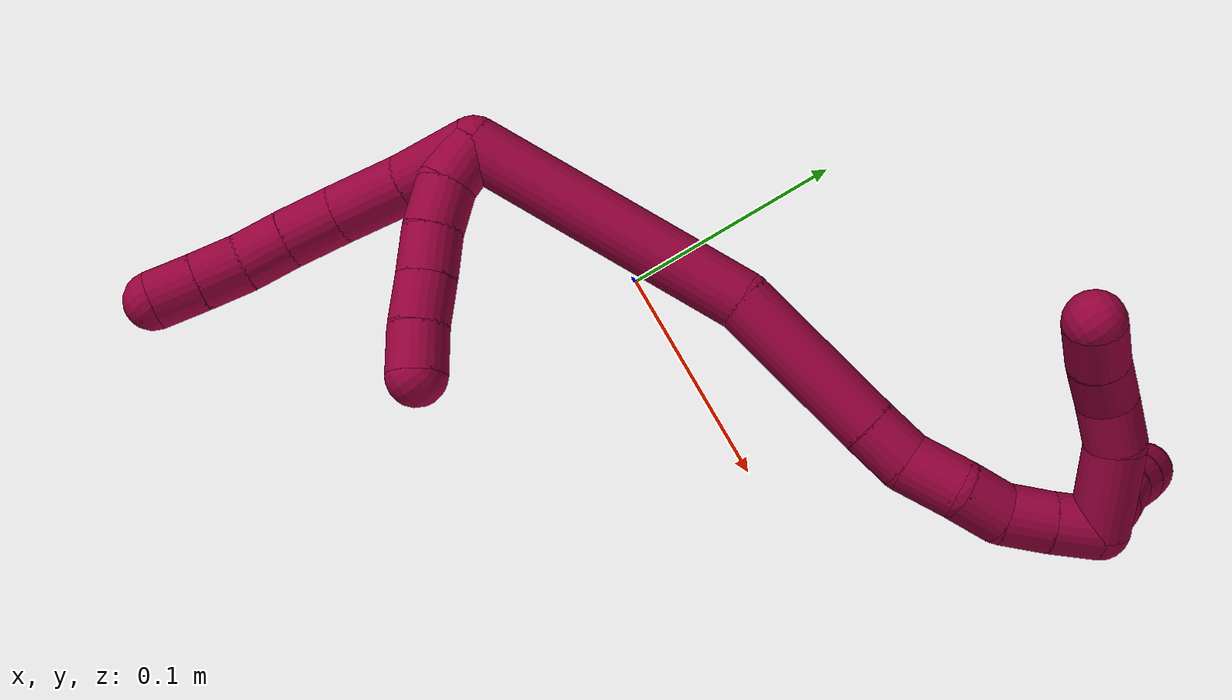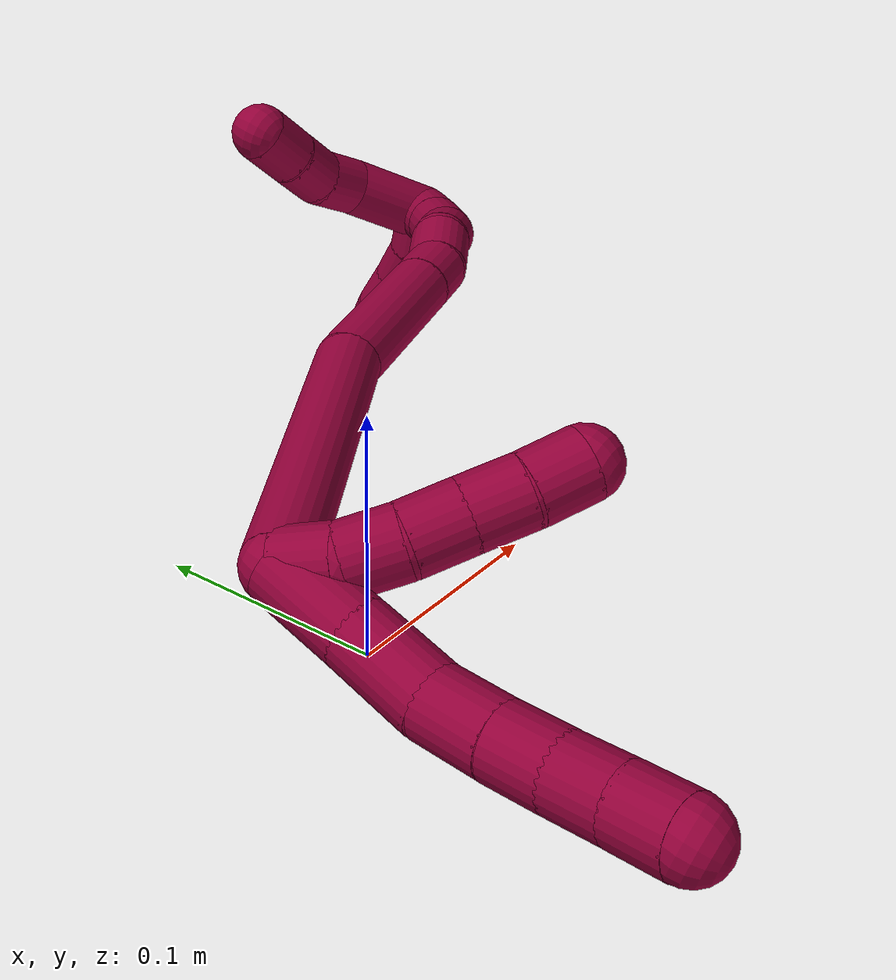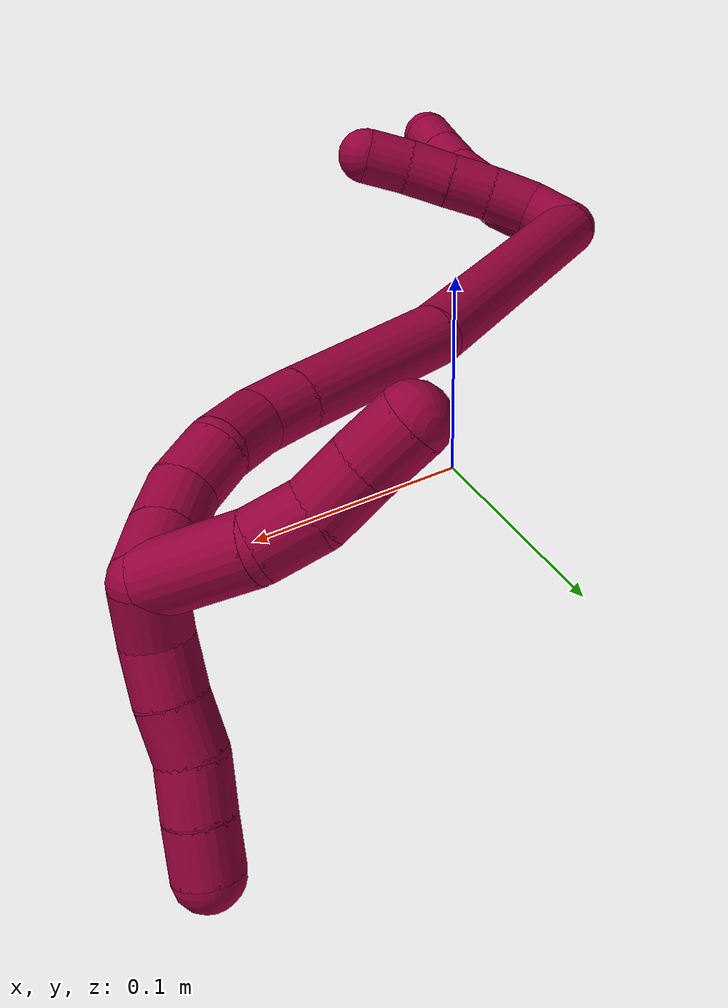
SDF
<sdf version="1.7">
 <world name="default">
  <model name="8">
   <static>0</static>
   <link name="8">
    <collision name="collision-cylinder-e_1_2_8">
     <pose>-0.002309 -0.001268 -0.016518 3.06499 -0.138485 -2.13197</pose>
     <geometry><cylinder><radius>0.0125</radius><length>0.033453</length></cylinder></geometry>
     <surface>
      <friction><ode><mu>1.16</mu><mu2>1.16</mu2><slip1>0</slip1><slip2>0</slip2></ode></friction>
      <contact><ode><kp>1e+06</kp><kd>1</kd><max_vel>0</max_vel><min_depth>0.001</min_depth></ode></contact>
     </surface>
    </collision>
    <visual name="visual-cylinder-e_1_2_8">
     <pose>-0.002309 -0.001268 -0.016518 3.06499 -0.138485 -2.13197</pose>
     <geometry><cylinder><radius>0.0125</radius><length>0.033453</length></cylinder></geometry>
     <material><ambient>0.584314 0 0.227451 1</ambient></material>
    </visual>
    <collision name="collision-cylinder-e_2_8_9">
     <pose>-0.00717 -0.004872 -0.048738 2.99389 -0.159389 -1.64717</pose>
     <geometry><cylinder><radius>0.0125</radius><length>0.032158</length></cylinder></geometry>
     <surface>
      <friction><ode><mu>1.16</mu><mu2>1.16</mu2><slip1>0</slip1><slip2>0</slip2></ode></friction>
      <contact><ode><kp>1e+06</kp><kd>1</kd><max_vel>0</max_vel><min_depth>0.001</min_depth></ode></contact>
     </surface>
    </collision>
    <visual name="visual-cylinder-e_2_8_9">
     <pose>-0.00717 -0.004872 -0.048738 2.99389 -0.159389 -1.64717</pose>
     <geometry><cylinder><radius>0.0125</radius><length>0.032158</length></cylinder></geometry>
     <material><ambient>0.584314 0 0.227451 1</ambient></material>
    </visual>
    <collision name="collision-cylinder-e_3_9_10">
     <pose>-0.009744 -0.01081 -0.075873 2.83639 -0.001826 -0.01187</pose>
     <geometry><cylinder><radius>0.0125</radius><length>0.023972</length></cylinder></geometry>
     <surface>
      <friction><ode><mu>1.16</mu><mu2>1.16</mu2><slip1>0</slip1><slip2>0</slip2></ode></friction>
      <contact><ode><kp>1e+06</kp><kd>1</kd><max_vel>0</max_vel><min_depth>0.001</min_depth></ode></contact>
     </surface>
    </collision>
    <visual name="visual-cylinder-e_3_9_10">
     <pose>-0.009744 -0.01081 -0.075873 2.83639 -0.001826 -0.01187</pose>
     <geometry><cylinder><radius>0.0125</radius><length>0.023972</length></cylinder></geometry>
     <material><ambient>0.584314 0 0.227451 1</ambient></material>
    </visual>
    <collision name="collision-cylinder-e_4_10_11">
     <pose>-0.009316 -0.017344 -0.097019 2.84844 0.044307 0.297933</pose>
     <geometry><cylinder><radius>0.0125</radius><length>0.020313</length></cylinder></geometry>
     <surface>
      <friction><ode><mu>1.16</mu><mu2>1.16</mu2><slip1>0</slip1><slip2>0</slip2></ode></friction>
      <contact><ode><kp>1e+06</kp><kd>1</kd><max_vel>0</max_vel><min_depth>0.001</min_depth></ode></contact>
     </surface>
    </collision>
    <visual name="visual-cylinder-e_4_10_11">
     <pose>-0.009316 -0.017344 -0.097019 2.84844 0.044307 0.297933</pose>
     <geometry><cylinder><radius>0.0125</radius><length>0.020313</length></cylinder></geometry>
     <material><ambient>0.584314 0 0.227451 1</ambient></material>
    </visual>
    <collision name="collision-cylinder-e_5_11_12">
     <pose>-0.008482 -0.024328 -0.115878 2.72455 0.038365 0.180839</pose>
     <geometry><cylinder><radius>0.0125</radius><length>0.02002</length></cylinder></geometry>
     <surface>
      <friction><ode><mu>1.16</mu><mu2>1.16</mu2><slip1>0</slip1><slip2>0</slip2></ode></friction>
      <contact><ode><kp>1e+06</kp><kd>1</kd><max_vel>0</max_vel><min_depth>0.001</min_depth></ode></contact>
     </surface>
    </collision>
    <visual name="visual-cylinder-e_5_11_12">
     <pose>-0.008482 -0.024328 -0.115878 2.72455 0.038365 0.180839</pose>
     <geometry><cylinder><radius>0.0125</radius><length>0.02002</length></cylinder></geometry>
     <material><ambient>0.584314 0 0.227451 1</ambient></material>
    </visual>
    <collision name="collision-cylinder-e_6_12_6">
     <pose>-0.007858 -0.032582 -0.13414 2.70963 0.02395 0.109057</pose>
     <geometry><cylinder><radius>0.0125</radius><length>0.020083</length></cylinder></geometry>
     <surface>
      <friction><ode><mu>1.16</mu><mu2>1.16</mu2><slip1>0</slip1><slip2>0</slip2></ode></friction>
      <contact><ode><kp>1e+06</kp><kd>1</kd><max_vel>0</max_vel><min_depth>0.001</min_depth></ode></contact>
     </surface>
    </collision>
    <visual name="visual-cylinder-e_6_12_6">
     <pose>-0.007858 -0.032582 -0.13414 2.70963 0.02395 0.109057</pose>
     <geometry><cylinder><radius>0.0125</radius><length>0.020083</length></cylinder></geometry>
     <material><ambient>0.584314 0 0.227451 1</ambient></material>
    </visual>
    <collision name="collision-cylinder-e_1_2_13">
     <pose>0.005415 -0.001722 -0.008228 2.93525 0.572274 2.46482</pose>
     <geometry><cylinder><radius>0.0125</radius><length>0.02</length></cylinder></geometry>
     <surface>
      <friction><ode><mu>1.16</mu><mu2>1.16</mu2><slip1>0</slip1><slip2>0</slip2></ode></friction>
      <contact><ode><kp>1e+06</kp><kd>1</kd><max_vel>0</max_vel><min_depth>0.001</min_depth></ode></contact>
     </surface>
    </collision>
    <visual name="visual-cylinder-e_1_2_13">
     <pose>0.005415 -0.001722 -0.008228 2.93525 0.572274 2.46482</pose>
     <geometry><cylinder><radius>0.0125</radius><length>0.02</length></cylinder></geometry>
     <material><ambient>0.584314 0 0.227451 1</ambient></material>
    </visual>
    <collision name="collision-cylinder-e_2_13_14">
     <pose>0.018553 -0.00362 -0.022808 3.11404 0.882363 3.08325</pose>
     <geometry><cylinder><radius>0.0125</radius><length>0.02</length></cylinder></geometry>
     <surface>
      <friction><ode><mu>1.16</mu><mu2>1.16</mu2><slip1>0</slip1><slip2>0</slip2></ode></friction>
      <contact><ode><kp>1e+06</kp><kd>1</kd><max_vel>0</max_vel><min_depth>0.001</min_depth></ode></contact>
     </surface>
    </collision>
    <visual name="visual-cylinder-e_2_13_14">
     <pose>0.018553 -0.00362 -0.022808 3.11404 0.882363 3.08325</pose>
     <geometry><cylinder><radius>0.0125</radius><length>0.02</length></cylinder></geometry>
     <material><ambient>0.584314 0 0.227451 1</ambient></material>
    </visual>
    <collision name="collision-cylinder-e_3_14_15">
     <pose>0.034729 -0.003154 -0.034463 -3.02133 1.00715 -2.92391</pose>
     <geometry><cylinder><radius>0.0125</radius><length>0.02</length></cylinder></geometry>
     <surface>
      <friction><ode><mu>1.16</mu><mu2>1.16</mu2><slip1>0</slip1><slip2>0</slip2></ode></friction>
      <contact><ode><kp>1e+06</kp><kd>1</kd><max_vel>0</max_vel><min_depth>0.001</min_depth></ode></contact>
     </surface>
    </collision>
    <visual name="visual-cylinder-e_3_14_15">
     <pose>0.034729 -0.003154 -0.034463 -3.02133 1.00715 -2.92391</pose>
     <geometry><cylinder><radius>0.0125</radius><length>0.02</length></cylinder></geometry>
     <material><ambient>0.584314 0 0.227451 1</ambient></material>
    </visual>
    <collision name="collision-cylinder-e_4_15_16">
     <pose>0.051547 -0.002091 -0.045231 -3.06454 0.990806 -2.99916</pose>
     <geometry><cylinder><radius>0.0125</radius><length>0.02</length></cylinder></geometry>
     <surface>
      <friction><ode><mu>1.16</mu><mu2>1.16</mu2><slip1>0</slip1><slip2>0</slip2></ode></friction>
      <contact><ode><kp>1e+06</kp><kd>1</kd><max_vel>0</max_vel><min_depth>0.001</min_depth></ode></contact>
     </surface>
    </collision>
    <visual name="visual-cylinder-e_4_15_16">
     <pose>0.051547 -0.002091 -0.045231 -3.06454 0.990806 -2.99916</pose>
     <geometry><cylinder><radius>0.0125</radius><length>0.02</length></cylinder></geometry>
     <material><ambient>0.584314 0 0.227451 1</ambient></material>
    </visual>
    <collision name="collision-cylinder-e_5_16_5">
     <pose>0.068695 -0.000538 -0.055339 -2.90262 1.07234 -2.74288</pose>
     <geometry><cylinder><radius>0.0125</radius><length>0.02</length></cylinder></geometry>
     <surface>
      <friction><ode><mu>1.16</mu><mu2>1.16</mu2><slip1>0</slip1><slip2>0</slip2></ode></friction>
      <contact><ode><kp>1e+06</kp><kd>1</kd><max_vel>0</max_vel><min_depth>0.001</min_depth></ode></contact>
     </surface>
    </collision>
    <visual name="visual-cylinder-e_5_16_5">
     <pose>0.068695 -0.000538 -0.055339 -2.90262 1.07234 -2.74288</pose>
     <geometry><cylinder><radius>0.0125</radius><length>0.02</length></cylinder></geometry>
     <material><ambient>0.584314 0 0.227451 1</ambient></material>
    </visual>
    <collision name="collision-cylinder-e_1_2_17">
     <pose>0.045202 0.034845 0.02581 -0.933273 0.806158 -0.423188</pose>
     <geometry><cylinder><radius>0.0125</radius><length>0.125277</length></cylinder></geometry>
     <surface>
      <friction><ode><mu>1.16</mu><mu2>1.16</mu2><slip1>0</slip1><slip2>0</slip2></ode></friction>
      <contact><ode><kp>1e+06</kp><kd>1</kd><max_vel>0</max_vel><min_depth>0.001</min_depth></ode></contact>
     </surface>
    </collision>
    <visual name="visual-cylinder-e_1_2_17">
     <pose>0.045202 0.034845 0.02581 -0.933273 0.806158 -0.423188</pose>
     <geometry><cylinder><radius>0.0125</radius><length>0.125277</length></cylinder></geometry>
     <material><ambient>0.584314 0 0.227451 1</ambient></material>
    </visual>
    <collision name="collision-cylinder-e_2_17_18">
     <pose>0.118797 0.089604 0.05768 -1.27537 0.938195 -0.71848</pose>
     <geometry><cylinder><radius>0.0125</radius><length>0.070411</length></cylinder></geometry>
     <surface>
      <friction><ode><mu>1.16</mu><mu2>1.16</mu2><slip1>0</slip1><slip2>0</slip2></ode></friction>
      <contact><ode><kp>1e+06</kp><kd>1</kd><max_vel>0</max_vel><min_depth>0.001</min_depth></ode></contact>
     </surface>
    </collision>
    <visual name="visual-cylinder-e_2_17_18">
     <pose>0.118797 0.089604 0.05768 -1.27537 0.938195 -0.71848</pose>
     <geometry><cylinder><radius>0.0125</radius><length>0.070411</length></cylinder></geometry>
     <material><ambient>0.584314 0 0.227451 1</ambient></material>
    </visual>
    <collision name="collision-cylinder-e_3_18_19">
     <pose>0.155251 0.115418 0.065647 -1.25836 0.915051 -0.688238</pose>
     <geometry><cylinder><radius>0.0125</radius><length>0.020341</length></cylinder></geometry>
     <surface>
      <friction><ode><mu>1.16</mu><mu2>1.16</mu2><slip1>0</slip1><slip2>0</slip2></ode></friction>
      <contact><ode><kp>1e+06</kp><kd>1</kd><max_vel>0</max_vel><min_depth>0.001</min_depth></ode></contact>
     </surface>
    </collision>
    <visual name="visual-cylinder-e_3_18_19">
     <pose>0.155251 0.115418 0.065647 -1.25836 0.915051 -0.688238</pose>
     <geometry><cylinder><radius>0.0125</radius><length>0.020341</length></cylinder></geometry>
     <material><ambient>0.584314 0 0.227451 1</ambient></material>
    </visual>
    <collision name="collision-cylinder-e_4_19_20">
     <pose>0.171782 0.127201 0.072968 -0.826704 0.814274 -0.373879</pose>
     <geometry><cylinder><radius>0.0125</radius><length>0.023294</length></cylinder></geometry>
     <surface>
      <friction><ode><mu>1.16</mu><mu2>1.16</mu2><slip1>0</slip1><slip2>0</slip2></ode></friction>
      <contact><ode><kp>1e+06</kp><kd>1</kd><max_vel>0</max_vel><min_depth>0.001</min_depth></ode></contact>
     </surface>
    </collision>
    <visual name="visual-cylinder-e_4_19_20">
     <pose>0.171782 0.127201 0.072968 -0.826704 0.814274 -0.373879</pose>
     <geometry><cylinder><radius>0.0125</radius><length>0.023294</length></cylinder></geometry>
     <material><ambient>0.584314 0 0.227451 1</ambient></material>
    </visual>
    <collision name="collision-cylinder-e_5_20_21">
     <pose>0.185771 0.140823 0.081686 -1.16737 0.580474 -0.389511</pose>
     <geometry><cylinder><radius>0.0125</radius><length>0.020129</length></cylinder></geometry>
     <surface>
      <friction><ode><mu>1.16</mu><mu2>1.16</mu2><slip1>0</slip1><slip2>0</slip2></ode></friction>
      <contact><ode><kp>1e+06</kp><kd>1</kd><max_vel>0</max_vel><min_depth>0.001</min_depth></ode></contact>
     </surface>
    </collision>
    <visual name="visual-cylinder-e_5_20_21">
     <pose>0.185771 0.140823 0.081686 -1.16737 0.580474 -0.389511</pose>
     <geometry><cylinder><radius>0.0125</radius><length>0.020129</length></cylinder></geometry>
     <material><ambient>0.584314 0 0.227451 1</ambient></material>
    </visual>
    <collision name="collision-cylinder-e_6_21_22">
     <pose>0.195515 0.155115 0.091299 -0.804252 0.434765 -0.187325</pose>
     <geometry><cylinder><radius>0.0125</radius><length>0.020057</length></cylinder></geometry>
     <surface>
      <friction><ode><mu>1.16</mu><mu2>1.16</mu2><slip1>0</slip1><slip2>0</slip2></ode></friction>
      <contact><ode><kp>1e+06</kp><kd>1</kd><max_vel>0</max_vel><min_depth>0.001</min_depth></ode></contact>
     </surface>
    </collision>
    <visual name="visual-cylinder-e_6_21_22">
     <pose>0.195515 0.155115 0.091299 -0.804252 0.434765 -0.187325</pose>
     <geometry><cylinder><radius>0.0125</radius><length>0.020057</length></cylinder></geometry>
     <material><ambient>0.584314 0 0.227451 1</ambient></material>
    </visual>
    <collision name="collision-cylinder-e_7_22_1">
     <pose>0.203745 0.168118 0.104487 -0.753394 0.401667 -0.160719</pose>
     <geometry><cylinder><radius>0.0125</radius><length>0.020491</length></cylinder></geometry>
     <surface>
      <friction><ode><mu>1.16</mu><mu2>1.16</mu2><slip1>0</slip1><slip2>0</slip2></ode></friction>
      <contact><ode><kp>1e+06</kp><kd>1</kd><max_vel>0</max_vel><min_depth>0.001</min_depth></ode></contact>
     </surface>
    </collision>
    <visual name="visual-cylinder-e_7_22_1">
     <pose>0.203745 0.168118 0.104487 -0.753394 0.401667 -0.160719</pose>
     <geometry><cylinder><radius>0.0125</radius><length>0.020491</length></cylinder></geometry>
     <material><ambient>0.584314 0 0.227451 1</ambient></material>
    </visual>
    <collision name="collision-cylinder-e_1_1_23">
     <pose>0.202338 0.182956 0.110755 -1.64331 -0.571914 0.612411</pose>
     <geometry><cylinder><radius>0.0125</radius><length>0.02</length></cylinder></geometry>
     <surface>
      <friction><ode><mu>1.16</mu><mu2>1.16</mu2><slip1>0</slip1><slip2>0</slip2></ode></friction>
      <contact><ode><kp>1e+06</kp><kd>1</kd><max_vel>0</max_vel><min_depth>0.001</min_depth></ode></contact>
     </surface>
    </collision>
    <visual name="visual-cylinder-e_1_1_23">
     <pose>0.202338 0.182956 0.110755 -1.64331 -0.571914 0.612411</pose>
     <geometry><cylinder><radius>0.0125</radius><length>0.02</length></cylinder></geometry>
     <material><ambient>0.584314 0 0.227451 1</ambient></material>
    </visual>
    <collision name="collision-cylinder-e_2_23_24">
     <pose>0.192142 0.199765 0.112633 -1.28368 -0.498726 0.376176</pose>
     <geometry><cylinder><radius>0.0125</radius><length>0.02</length></cylinder></geometry>
     <surface>
      <friction><ode><mu>1.16</mu><mu2>1.16</mu2><slip1>0</slip1><slip2>0</slip2></ode></friction>
      <contact><ode><kp>1e+06</kp><kd>1</kd><max_vel>0</max_vel><min_depth>0.001</min_depth></ode></contact>
     </surface>
    </collision>
    <visual name="visual-cylinder-e_2_23_24">
     <pose>0.192142 0.199765 0.112633 -1.28368 -0.498726 0.376176</pose>
     <geometry><cylinder><radius>0.0125</radius><length>0.02</length></cylinder></geometry>
     <material><ambient>0.584314 0 0.227451 1</ambient></material>
    </visual>
    <collision name="collision-cylinder-e_3_24_25">
     <pose>0.181797 0.216044 0.117827 -1.23902 -0.589871 0.42672</pose>
     <geometry><cylinder><radius>0.0125</radius><length>0.02</length></cylinder></geometry>
     <surface>
      <friction><ode><mu>1.16</mu><mu2>1.16</mu2><slip1>0</slip1><slip2>0</slip2></ode></friction>
      <contact><ode><kp>1e+06</kp><kd>1</kd><max_vel>0</max_vel><min_depth>0.001</min_depth></ode></contact>
     </surface>
    </collision>
    <visual name="visual-cylinder-e_3_24_25">
     <pose>0.181797 0.216044 0.117827 -1.23902 -0.589871 0.42672</pose>
     <geometry><cylinder><radius>0.0125</radius><length>0.02</length></cylinder></geometry>
     <material><ambient>0.584314 0 0.227451 1</ambient></material>
    </visual>
    <collision name="collision-cylinder-e_4_25_26">
     <pose>0.172297 0.232861 0.122591 -1.34512 -0.404691 0.323919</pose>
     <geometry><cylinder><radius>0.0125</radius><length>0.02</length></cylinder></geometry>
     <surface>
      <friction><ode><mu>1.16</mu><mu2>1.16</mu2><slip1>0</slip1><slip2>0</slip2></ode></friction>
      <contact><ode><kp>1e+06</kp><kd>1</kd><max_vel>0</max_vel><min_depth>0.001</min_depth></ode></contact>
     </surface>
    </collision>
    <visual name="visual-cylinder-e_4_25_26">
     <pose>0.172297 0.232861 0.122591 -1.34512 -0.404691 0.323919</pose>
     <geometry><cylinder><radius>0.0125</radius><length>0.02</length></cylinder></geometry>
     <material><ambient>0.584314 0 0.227451 1</ambient></material>
    </visual>
    <collision name="collision-cylinder-e_5_26_4">
     <pose>0.163971 0.250648 0.126324 -1.38311 -0.454247 0.37813</pose>
     <geometry><cylinder><radius>0.0125</radius><length>0.02</length></cylinder></geometry>
     <surface>
      <friction><ode><mu>1.16</mu><mu2>1.16</mu2><slip1>0</slip1><slip2>0</slip2></ode></friction>
      <contact><ode><kp>1e+06</kp><kd>1</kd><max_vel>0</max_vel><min_depth>0.001</min_depth></ode></contact>
     </surface>
    </collision>
    <visual name="visual-cylinder-e_5_26_4">
     <pose>0.163971 0.250648 0.126324 -1.38311 -0.454247 0.37813</pose>
     <geometry><cylinder><radius>0.0125</radius><length>0.02</length></cylinder></geometry>
     <material><ambient>0.584314 0 0.227451 1</ambient></material>
    </visual>
    <collision name="collision-cylinder-e_1_1_27">
     <pose>0.199768 0.162835 0.124468 0.730356 -0.426005 -0.165006</pose>
     <geometry><cylinder><radius>0.0125</radius><length>0.038631</length></cylinder></geometry>
     <surface>
      <friction><ode><mu>1.16</mu><mu2>1.16</mu2><slip1>0</slip1><slip2>0</slip2></ode></friction>
      <contact><ode><kp>1e+06</kp><kd>1</kd><max_vel>0</max_vel><min_depth>0.001</min_depth></ode></contact>
     </surface>
    </collision>
    <visual name="visual-cylinder-e_1_1_27">
     <pose>0.199768 0.162835 0.124468 0.730356 -0.426005 -0.165006</pose>
     <geometry><cylinder><radius>0.0125</radius><length>0.038631</length></cylinder></geometry>
     <material><ambient>0.584314 0 0.227451 1</ambient></material>
    </visual>
    <collision name="collision-cylinder-e_2_27_28">
     <pose>0.186426 0.143381 0.141646 1.0851 -0.550687 -0.337426</pose>
     <geometry><cylinder><radius>0.0125</radius><length>0.020488</length></cylinder></geometry>
     <surface>
      <friction><ode><mu>1.16</mu><mu2>1.16</mu2><slip1>0</slip1><slip2>0</slip2></ode></friction>
      <contact><ode><kp>1e+06</kp><kd>1</kd><max_vel>0</max_vel><min_depth>0.001</min_depth></ode></contact>
     </surface>
    </collision>
    <visual name="visual-cylinder-e_2_27_28">
     <pose>0.186426 0.143381 0.141646 1.0851 -0.550687 -0.337426</pose>
     <geometry><cylinder><radius>0.0125</radius><length>0.020488</length></cylinder></geometry>
     <material><ambient>0.584314 0 0.227451 1</ambient></material>
    </visual>
    <collision name="collision-cylinder-e_3_28_29">
     <pose>0.178243 0.126537 0.149117 1.21448 -0.282141 -0.19671</pose>
     <geometry><cylinder><radius>0.0125</radius><length>0.020273</length></cylinder></geometry>
     <surface>
      <friction><ode><mu>1.16</mu><mu2>1.16</mu2><slip1>0</slip1><slip2>0</slip2></ode></friction>
      <contact><ode><kp>1e+06</kp><kd>1</kd><max_vel>0</max_vel><min_depth>0.001</min_depth></ode></contact>
     </surface>
    </collision>
    <visual name="visual-cylinder-e_3_28_29">
     <pose>0.178243 0.126537 0.149117 1.21448 -0.282141 -0.19671</pose>
     <geometry><cylinder><radius>0.0125</radius><length>0.020273</length></cylinder></geometry>
     <material><ambient>0.584314 0 0.227451 1</ambient></material>
    </visual>
    <collision name="collision-cylinder-e_4_29_3">
     <pose>0.172856 0.108403 0.156806 1.12605 -0.251557 -0.15928</pose>
     <geometry><cylinder><radius>0.0125</radius><length>0.020608</length></cylinder></geometry>
     <surface>
      <friction><ode><mu>1.16</mu><mu2>1.16</mu2><slip1>0</slip1><slip2>0</slip2></ode></friction>
      <contact><ode><kp>1e+06</kp><kd>1</kd><max_vel>0</max_vel><min_depth>0.001</min_depth></ode></contact>
     </surface>
    </collision>
    <visual name="visual-cylinder-e_4_29_3">
     <pose>0.172856 0.108403 0.156806 1.12605 -0.251557 -0.15928</pose>
     <geometry><cylinder><radius>0.0125</radius><length>0.020608</length></cylinder></geometry>
     <material><ambient>0.584314 0 0.227451 1</ambient></material>
    </visual>
    <collision name="collision-sphere-3">
     <pose>0.170292 0.099395 0.1611 0 -0 0</pose>
     <geometry><sphere><radius>0.0125</radius></sphere></geometry>
     <surface>
      <friction><ode><mu>1.16</mu><mu2>1.16</mu2><slip1>0</slip1><slip2>0</slip2></ode></friction>
      <contact><ode><kp>1e+06</kp><kd>1</kd><max_vel>0</max_vel><min_depth>0.001</min_depth></ode></contact>
     </surface>
    </collision>
    <visual name="visual-sphere-3">
     <pose>0.170292 0.099395 0.1611 0 -0 0</pose>
     <geometry><sphere><radius>0.0125</radius></sphere></geometry>
     <material><ambient>0.584314 0 0.227451 1</ambient></material>
    </visual>
    <collision name="collision-sphere-29">
     <pose>0.175421 0.117412 0.152513 0 -0 0</pose>
     <geometry><sphere><radius>0.0125</radius></sphere></geometry>
     <surface>
      <friction><ode><mu>1.16</mu><mu2>1.16</mu2><slip1>0</slip1><slip2>0</slip2></ode></friction>
      <contact><ode><kp>1e+06</kp><kd>1</kd><max_vel>0</max_vel><min_depth>0.001</min_depth></ode></contact>
     </surface>
    </collision>
    <visual name="visual-sphere-29">
     <pose>0.175421 0.117412 0.152513 0 -0 0</pose>
     <geometry><sphere><radius>0.0125</radius></sphere></geometry>
     <material><ambient>0.584314 0 0.227451 1</ambient></material>
    </visual>
    <collision name="collision-sphere-28">
     <pose>0.181066 0.135661 0.145721 0 -0 0</pose>
     <geometry><sphere><radius>0.0125</radius></sphere></geometry>
     <surface>
      <friction><ode><mu>1.16</mu><mu2>1.16</mu2><slip1>0</slip1><slip2>0</slip2></ode></friction>
      <contact><ode><kp>1e+06</kp><kd>1</kd><max_vel>0</max_vel><min_depth>0.001</min_depth></ode></contact>
     </surface>
    </collision>
    <visual name="visual-sphere-28">
     <pose>0.181066 0.135661 0.145721 0 -0 0</pose>
     <geometry><sphere><radius>0.0125</radius></sphere></geometry>
     <material><ambient>0.584314 0 0.227451 1</ambient></material>
    </visual>
    <collision name="collision-sphere-27">
     <pose>0.191786 0.151101 0.137571 0 -0 0</pose>
     <geometry><sphere><radius>0.0125</radius></sphere></geometry>
     <surface>
      <friction><ode><mu>1.16</mu><mu2>1.16</mu2><slip1>0</slip1><slip2>0</slip2></ode></friction>
      <contact><ode><kp>1e+06</kp><kd>1</kd><max_vel>0</max_vel><min_depth>0.001</min_depth></ode></contact>
     </surface>
    </collision>
    <visual name="visual-sphere-27">
     <pose>0.191786 0.151101 0.137571 0 -0 0</pose>
     <geometry><sphere><radius>0.0125</radius></sphere></geometry>
     <material><ambient>0.584314 0 0.227451 1</ambient></material>
    </visual>
    <collision name="collision-sphere-4">
     <pose>0.159584 0.259476 0.128001 0 -0 0</pose>
     <geometry><sphere><radius>0.0125</radius></sphere></geometry>
     <surface>
      <friction><ode><mu>1.16</mu><mu2>1.16</mu2><slip1>0</slip1><slip2>0</slip2></ode></friction>
      <contact><ode><kp>1e+06</kp><kd>1</kd><max_vel>0</max_vel><min_depth>0.001</min_depth></ode></contact>
     </surface>
    </collision>
    <visual name="visual-sphere-4">
     <pose>0.159584 0.259476 0.128001 0 -0 0</pose>
     <geometry><sphere><radius>0.0125</radius></sphere></geometry>
     <material><ambient>0.584314 0 0.227451 1</ambient></material>
    </visual>
    <collision name="collision-sphere-26">
     <pose>0.168359 0.24182 0.124647 0 -0 0</pose>
     <geometry><sphere><radius>0.0125</radius></sphere></geometry>
     <surface>
      <friction><ode><mu>1.16</mu><mu2>1.16</mu2><slip1>0</slip1><slip2>0</slip2></ode></friction>
      <contact><ode><kp>1e+06</kp><kd>1</kd><max_vel>0</max_vel><min_depth>0.001</min_depth></ode></contact>
     </surface>
    </collision>
    <visual name="visual-sphere-26">
     <pose>0.168359 0.24182 0.124647 0 -0 0</pose>
     <geometry><sphere><radius>0.0125</radius></sphere></geometry>
     <material><ambient>0.584314 0 0.227451 1</ambient></material>
    </visual>
    <collision name="collision-sphere-25">
     <pose>0.176234 0.223901 0.120534 0 -0 0</pose>
     <geometry><sphere><radius>0.0125</radius></sphere></geometry>
     <surface>
      <friction><ode><mu>1.16</mu><mu2>1.16</mu2><slip1>0</slip1><slip2>0</slip2></ode></friction>
      <contact><ode><kp>1e+06</kp><kd>1</kd><max_vel>0</max_vel><min_depth>0.001</min_depth></ode></contact>
     </surface>
    </collision>
    <visual name="visual-sphere-25">
     <pose>0.176234 0.223901 0.120534 0 -0 0</pose>
     <geometry><sphere><radius>0.0125</radius></sphere></geometry>
     <material><ambient>0.584314 0 0.227451 1</ambient></material>
    </visual>
    <collision name="collision-sphere-24">
     <pose>0.187359 0.208188 0.11512 0 -0 0</pose>
     <geometry><sphere><radius>0.0125</radius></sphere></geometry>
     <surface>
      <friction><ode><mu>1.16</mu><mu2>1.16</mu2><slip1>0</slip1><slip2>0</slip2></ode></friction>
      <contact><ode><kp>1e+06</kp><kd>1</kd><max_vel>0</max_vel><min_depth>0.001</min_depth></ode></contact>
     </surface>
    </collision>
    <visual name="visual-sphere-24">
     <pose>0.187359 0.208188 0.11512 0 -0 0</pose>
     <geometry><sphere><radius>0.0125</radius></sphere></geometry>
     <material><ambient>0.584314 0 0.227451 1</ambient></material>
    </visual>
    <collision name="collision-sphere-23">
     <pose>0.196925 0.191343 0.110146 0 -0 0</pose>
     <geometry><sphere><radius>0.0125</radius></sphere></geometry>
     <surface>
      <friction><ode><mu>1.16</mu><mu2>1.16</mu2><slip1>0</slip1><slip2>0</slip2></ode></friction>
      <contact><ode><kp>1e+06</kp><kd>1</kd><max_vel>0</max_vel><min_depth>0.001</min_depth></ode></contact>
     </surface>
    </collision>
    <visual name="visual-sphere-23">
     <pose>0.196925 0.191343 0.110146 0 -0 0</pose>
     <geometry><sphere><radius>0.0125</radius></sphere></geometry>
     <material><ambient>0.584314 0 0.227451 1</ambient></material>
    </visual>
    <collision name="collision-sphere-1">
     <pose>0.20775 0.17457 0.111365 0 -0 0</pose>
     <geometry><sphere><radius>0.0125</radius></sphere></geometry>
     <surface>
      <friction><ode><mu>1.16</mu><mu2>1.16</mu2><slip1>0</slip1><slip2>0</slip2></ode></friction>
      <contact><ode><kp>1e+06</kp><kd>1</kd><max_vel>0</max_vel><min_depth>0.001</min_depth></ode></contact>
     </surface>
    </collision>
    <visual name="visual-sphere-1">
     <pose>0.20775 0.17457 0.111365 0 -0 0</pose>
     <geometry><sphere><radius>0.0125</radius></sphere></geometry>
     <material><ambient>0.584314 0 0.227451 1</ambient></material>
    </visual>
    <collision name="collision-sphere-22">
     <pose>0.199739 0.161667 0.097609 0 -0 0</pose>
     <geometry><sphere><radius>0.0125</radius></sphere></geometry>
     <surface>
      <friction><ode><mu>1.16</mu><mu2>1.16</mu2><slip1>0</slip1><slip2>0</slip2></ode></friction>
      <contact><ode><kp>1e+06</kp><kd>1</kd><max_vel>0</max_vel><min_depth>0.001</min_depth></ode></contact>
     </surface>
    </collision>
    <visual name="visual-sphere-22">
     <pose>0.199739 0.161667 0.097609 0 -0 0</pose>
     <geometry><sphere><radius>0.0125</radius></sphere></geometry>
     <material><ambient>0.584314 0 0.227451 1</ambient></material>
    </visual>
    <collision name="collision-sphere-21">
     <pose>0.191291 0.148563 0.08499 0 -0 0</pose>
     <geometry><sphere><radius>0.0125</radius></sphere></geometry>
     <surface>
      <friction><ode><mu>1.16</mu><mu2>1.16</mu2><slip1>0</slip1><slip2>0</slip2></ode></friction>
      <contact><ode><kp>1e+06</kp><kd>1</kd><max_vel>0</max_vel><min_depth>0.001</min_depth></ode></contact>
     </surface>
    </collision>
    <visual name="visual-sphere-21">
     <pose>0.191291 0.148563 0.08499 0 -0 0</pose>
     <geometry><sphere><radius>0.0125</radius></sphere></geometry>
     <material><ambient>0.584314 0 0.227451 1</ambient></material>
    </visual>
    <collision name="collision-sphere-12">
     <pose>-0.008098 -0.028379 -0.125023 0 -0 0</pose>
     <geometry><sphere><radius>0.0125</radius></sphere></geometry>
     <surface>
      <friction><ode><mu>1.16</mu><mu2>1.16</mu2><slip1>0</slip1><slip2>0</slip2></ode></friction>
      <contact><ode><kp>1e+06</kp><kd>1</kd><max_vel>0</max_vel><min_depth>0.001</min_depth></ode></contact>
     </surface>
    </collision>
    <visual name="visual-sphere-12">
     <pose>-0.008098 -0.028379 -0.125023 0 -0 0</pose>
     <geometry><sphere><radius>0.0125</radius></sphere></geometry>
     <material><ambient>0.584314 0 0.227451 1</ambient></material>
    </visual>
    <collision name="collision-sphere-11">
     <pose>-0.008866 -0.020276 -0.106732 0 -0 0</pose>
     <geometry><sphere><radius>0.0125</radius></sphere></geometry>
     <surface>
      <friction><ode><mu>1.16</mu><mu2>1.16</mu2><slip1>0</slip1><slip2>0</slip2></ode></friction>
      <contact><ode><kp>1e+06</kp><kd>1</kd><max_vel>0</max_vel><min_depth>0.001</min_depth></ode></contact>
     </surface>
    </collision>
    <visual name="visual-sphere-11">
     <pose>-0.008866 -0.020276 -0.106732 0 -0 0</pose>
     <geometry><sphere><radius>0.0125</radius></sphere></geometry>
     <material><ambient>0.584314 0 0.227451 1</ambient></material>
    </visual>
    <collision name="collision-sphere-10">
     <pose>-0.009766 -0.014412 -0.087305 0 -0 0</pose>
     <geometry><sphere><radius>0.0125</radius></sphere></geometry>
     <surface>
      <friction><ode><mu>1.16</mu><mu2>1.16</mu2><slip1>0</slip1><slip2>0</slip2></ode></friction>
      <contact><ode><kp>1e+06</kp><kd>1</kd><max_vel>0</max_vel><min_depth>0.001</min_depth></ode></contact>
     </surface>
    </collision>
    <visual name="visual-sphere-10">
     <pose>-0.009766 -0.014412 -0.087305 0 -0 0</pose>
     <geometry><sphere><radius>0.0125</radius></sphere></geometry>
     <material><ambient>0.584314 0 0.227451 1</ambient></material>
    </visual>
    <collision name="collision-sphere-9">
     <pose>-0.009722 -0.007208 -0.06444 0 -0 0</pose>
     <geometry><sphere><radius>0.0125</radius></sphere></geometry>
     <surface>
      <friction><ode><mu>1.16</mu><mu2>1.16</mu2><slip1>0</slip1><slip2>0</slip2></ode></friction>
      <contact><ode><kp>1e+06</kp><kd>1</kd><max_vel>0</max_vel><min_depth>0.001</min_depth></ode></contact>
     </surface>
    </collision>
    <visual name="visual-sphere-9">
     <pose>-0.009722 -0.007208 -0.06444 0 -0 0</pose>
     <geometry><sphere><radius>0.0125</radius></sphere></geometry>
     <material><ambient>0.584314 0 0.227451 1</ambient></material>
    </visual>
    <collision name="collision-sphere-2">
     <geometry><sphere><radius>0.0125</radius></sphere></geometry>
     <surface>
      <friction><ode><mu>1.16</mu><mu2>1.16</mu2><slip1>0</slip1><slip2>0</slip2></ode></friction>
      <contact><ode><kp>1e+06</kp><kd>1</kd><max_vel>0</max_vel><min_depth>0.001</min_depth></ode></contact>
     </surface>
    </collision>
    <visual name="visual-sphere-2">
     <geometry><sphere><radius>0.0125</radius></sphere></geometry>
     <material><ambient>0.584314 0 0.227451 1</ambient></material>
    </visual>
    <collision name="collision-sphere-19">
     <pose>0.163312 0.121319 0.067553 0 -0 0</pose>
     <geometry><sphere><radius>0.0125</radius></sphere></geometry>
     <surface>
      <friction><ode><mu>1.16</mu><mu2>1.16</mu2><slip1>0</slip1><slip2>0</slip2></ode></friction>
      <contact><ode><kp>1e+06</kp><kd>1</kd><max_vel>0</max_vel><min_depth>0.001</min_depth></ode></contact>
     </surface>
    </collision>
    <visual name="visual-sphere-19">
     <pose>0.163312 0.121319 0.067553 0 -0 0</pose>
     <geometry><sphere><radius>0.0125</radius></sphere></geometry>
     <material><ambient>0.584314 0 0.227451 1</ambient></material>
    </visual>
    <collision name="collision-sphere-8">
     <pose>-0.004618 -0.002536 -0.033036 0 -0 0</pose>
     <geometry><sphere><radius>0.0125</radius></sphere></geometry>
     <surface>
      <friction><ode><mu>1.16</mu><mu2>1.16</mu2><slip1>0</slip1><slip2>0</slip2></ode></friction>
      <contact><ode><kp>1e+06</kp><kd>1</kd><max_vel>0</max_vel><min_depth>0.001</min_depth></ode></contact>
     </surface>
    </collision>
    <visual name="visual-sphere-8">
     <pose>-0.004618 -0.002536 -0.033036 0 -0 0</pose>
     <geometry><sphere><radius>0.0125</radius></sphere></geometry>
     <material><ambient>0.584314 0 0.227451 1</ambient></material>
    </visual>
    <collision name="collision-sphere-6">
     <pose>-0.007617 -0.036785 -0.143256 0 -0 0</pose>
     <geometry><sphere><radius>0.0125</radius></sphere></geometry>
     <surface>
      <friction><ode><mu>1.16</mu><mu2>1.16</mu2><slip1>0</slip1><slip2>0</slip2></ode></friction>
      <contact><ode><kp>1e+06</kp><kd>1</kd><max_vel>0</max_vel><min_depth>0.001</min_depth></ode></contact>
     </surface>
    </collision>
    <visual name="visual-sphere-6">
     <pose>-0.007617 -0.036785 -0.143256 0 -0 0</pose>
     <geometry><sphere><radius>0.0125</radius></sphere></geometry>
     <material><ambient>0.584314 0 0.227451 1</ambient></material>
    </visual>
    <collision name="collision-sphere-13">
     <pose>0.010831 -0.003445 -0.016457 0 -0 0</pose>
     <geometry><sphere><radius>0.0125</radius></sphere></geometry>
     <surface>
      <friction><ode><mu>1.16</mu><mu2>1.16</mu2><slip1>0</slip1><slip2>0</slip2></ode></friction>
      <contact><ode><kp>1e+06</kp><kd>1</kd><max_vel>0</max_vel><min_depth>0.001</min_depth></ode></contact>
     </surface>
    </collision>
    <visual name="visual-sphere-13">
     <pose>0.010831 -0.003445 -0.016457 0 -0 0</pose>
     <geometry><sphere><radius>0.0125</radius></sphere></geometry>
     <material><ambient>0.584314 0 0.227451 1</ambient></material>
    </visual>
    <collision name="collision-sphere-14">
     <pose>0.026276 -0.003795 -0.029159 0 -0 0</pose>
     <geometry><sphere><radius>0.0125</radius></sphere></geometry>
     <surface>
      <friction><ode><mu>1.16</mu><mu2>1.16</mu2><slip1>0</slip1><slip2>0</slip2></ode></friction>
      <contact><ode><kp>1e+06</kp><kd>1</kd><max_vel>0</max_vel><min_depth>0.001</min_depth></ode></contact>
     </surface>
    </collision>
    <visual name="visual-sphere-14">
     <pose>0.026276 -0.003795 -0.029159 0 -0 0</pose>
     <geometry><sphere><radius>0.0125</radius></sphere></geometry>
     <material><ambient>0.584314 0 0.227451 1</ambient></material>
    </visual>
    <collision name="collision-sphere-15">
     <pose>0.043182 -0.002513 -0.039767 0 -0 0</pose>
     <geometry><sphere><radius>0.0125</radius></sphere></geometry>
     <surface>
      <friction><ode><mu>1.16</mu><mu2>1.16</mu2><slip1>0</slip1><slip2>0</slip2></ode></friction>
      <contact><ode><kp>1e+06</kp><kd>1</kd><max_vel>0</max_vel><min_depth>0.001</min_depth></ode></contact>
     </surface>
    </collision>
    <visual name="visual-sphere-15">
     <pose>0.043182 -0.002513 -0.039767 0 -0 0</pose>
     <geometry><sphere><radius>0.0125</radius></sphere></geometry>
     <material><ambient>0.584314 0 0.227451 1</ambient></material>
    </visual>
    <collision name="collision-sphere-16">
     <pose>0.059911 -0.001669 -0.050695 0 -0 0</pose>
     <geometry><sphere><radius>0.0125</radius></sphere></geometry>
     <surface>
      <friction><ode><mu>1.16</mu><mu2>1.16</mu2><slip1>0</slip1><slip2>0</slip2></ode></friction>
      <contact><ode><kp>1e+06</kp><kd>1</kd><max_vel>0</max_vel><min_depth>0.001</min_depth></ode></contact>
     </surface>
    </collision>
    <visual name="visual-sphere-16">
     <pose>0.059911 -0.001669 -0.050695 0 -0 0</pose>
     <geometry><sphere><radius>0.0125</radius></sphere></geometry>
     <material><ambient>0.584314 0 0.227451 1</ambient></material>
    </visual>
    <collision name="collision-sphere-5">
     <pose>0.077478 0.000594 -0.059984 0 -0 0</pose>
     <geometry><sphere><radius>0.0125</radius></sphere></geometry>
     <surface>
      <friction><ode><mu>1.16</mu><mu2>1.16</mu2><slip1>0</slip1><slip2>0</slip2></ode></friction>
      <contact><ode><kp>1e+06</kp><kd>1</kd><max_vel>0</max_vel><min_depth>0.001</min_depth></ode></contact>
     </surface>
    </collision>
    <visual name="visual-sphere-5">
     <pose>0.077478 0.000594 -0.059984 0 -0 0</pose>
     <geometry><sphere><radius>0.0125</radius></sphere></geometry>
     <material><ambient>0.584314 0 0.227451 1</ambient></material>
    </visual>
    <collision name="collision-sphere-17">
     <pose>0.090404 0.069691 0.05162 0 -0 0</pose>
     <geometry><sphere><radius>0.0125</radius></sphere></geometry>
     <surface>
      <friction><ode><mu>1.16</mu><mu2>1.16</mu2><slip1>0</slip1><slip2>0</slip2></ode></friction>
      <contact><ode><kp>1e+06</kp><kd>1</kd><max_vel>0</max_vel><min_depth>0.001</min_depth></ode></contact>
     </surface>
    </collision>
    <visual name="visual-sphere-17">
     <pose>0.090404 0.069691 0.05162 0 -0 0</pose>
     <geometry><sphere><radius>0.0125</radius></sphere></geometry>
     <material><ambient>0.584314 0 0.227451 1</ambient></material>
    </visual>
    <collision name="collision-sphere-18">
     <pose>0.14719 0.109517 0.063741 0 -0 0</pose>
     <geometry><sphere><radius>0.0125</radius></sphere></geometry>
     <surface>
      <friction><ode><mu>1.16</mu><mu2>1.16</mu2><slip1>0</slip1><slip2>0</slip2></ode></friction>
      <contact><ode><kp>1e+06</kp><kd>1</kd><max_vel>0</max_vel><min_depth>0.001</min_depth></ode></contact>
     </surface>
    </collision>
    <visual name="visual-sphere-18">
     <pose>0.14719 0.109517 0.063741 0 -0 0</pose>
     <geometry><sphere><radius>0.0125</radius></sphere></geometry>
     <material><ambient>0.584314 0 0.227451 1</ambient></material>
    </visual>
    <collision name="collision-sphere-20">
     <pose>0.180252 0.133083 0.078382 0 -0 0</pose>
     <geometry><sphere><radius>0.0125</radius></sphere></geometry>
     <surface>
      <friction><ode><mu>1.16</mu><mu2>1.16</mu2><slip1>0</slip1><slip2>0</slip2></ode></friction>
      <contact><ode><kp>1e+06</kp><kd>1</kd><max_vel>0</max_vel><min_depth>0.001</min_depth></ode></contact>
     </surface>
    </collision>
    <visual name="visual-sphere-20">
     <pose>0.180252 0.133083 0.078382 0 -0 0</pose>
     <geometry><sphere><radius>0.0125</radius></sphere></geometry>
     <material><ambient>0.584314 0 0.227451 1</ambient></material>
    </visual>
    <inertial>
     <pose>0.096675 0.078499 0.036625 0 -0 0</pose>
     <mass>0.75</mass>
     <inertia>
      <ixx>8.8e-05</ixx>
      <ixy>0</ixy>
      <ixz>0</ixz>
      <iyy>0.000118</iyy>
      <iyz>0</iyz>
      <izz>-0.000263</izz>
     </inertia>
    </inertial>
   </link>
   <pose>-0.078132 -0.027857 0.088932 -1.23717 -0.600887 -0.099011</pose>
  </model>
 </world>
</sdf>
